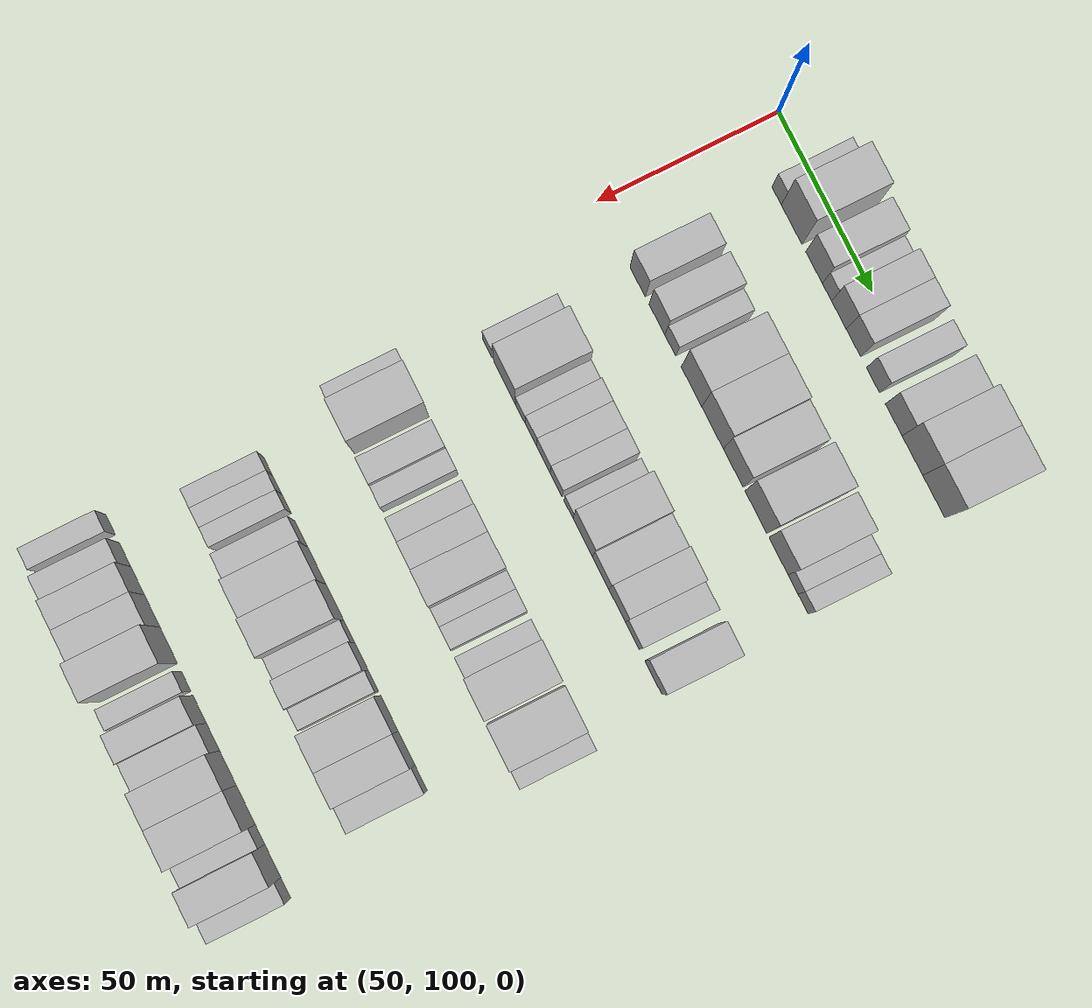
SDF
<sdf version="1.6">
 <world name="default">
  <model name="building_81">
   <static>1</static>
   <pose>50.0000 118.4614 0 0.000000 0.000000 0.000000</pose>
   <link name="link">
    <pose>0 0 6.00 0 0 0</pose>
    <collision name="collision"><geometry><box><size>20.0000 4.9748 12.0000</size></box></geometry></collision>
    <visual name="visual">
     <cast_shadows>0</cast_shadows>
     <geometry><box><size>20.0000 4.9748 12.0000</size></box></geometry>
     <material>
      <script>
       <uri>model://HANNAS_wall/materials/scripts</uri>
       <uri>model://HANNAS_wall/materials/textures</uri>
       <name>vrc/HANNAS_wall</name>
      </script>
     </material>
    </visual>
   </link>
  </model>
  <model name="building_82">
   <static>1</static>
   <pose>50.0000 126.4350 0 0.000000 0.000000 0.000000</pose>
   <link name="link">
    <pose>0 0 12.00 0 0 0</pose>
    <collision name="collision"><geometry><box><size>20.0000 10.9725 24.0000</size></box></geometry></collision>
    <visual name="visual">
     <cast_shadows>0</cast_shadows>
     <geometry><box><size>20.0000 10.9725 24.0000</size></box></geometry>
     <material>
      <script>
       <uri>model://HANNAS_wall/materials/scripts</uri>
       <uri>model://HANNAS_wall/materials/textures</uri>
       <name>vrc/HANNAS_wall</name>
      </script>
     </material>
    </visual>
   </link>
  </model>
  <model name="building_83">
   <static>1</static>
   <pose>50.0000 138.3244 0 0.000000 0.000000 0.000000</pose>
   <link name="link">
    <pose>0 0 9.00 0 0 0</pose>
    <collision name="collision"><geometry><box><size>20.0000 8.8062 18.0000</size></box></geometry></collision>
    <visual name="visual">
     <cast_shadows>0</cast_shadows>
     <geometry><box><size>20.0000 8.8062 18.0000</size></box></geometry>
     <material>
      <script>
       <uri>model://HANNAS_wall/materials/scripts</uri>
       <uri>model://HANNAS_wall/materials/textures</uri>
       <name>vrc/HANNAS_wall</name>
      </script>
     </material>
    </visual>
   </link>
  </model>
  <model name="building_84">
   <static>1</static>
   <pose>50.0000 145.1741 0 0.000000 0.000000 0.000000</pose>
   <link name="link">
    <pose>0 0 6.00 0 0 0</pose>
    <collision name="collision"><geometry><box><size>20.0000 4.8932 12.0000</size></box></geometry></collision>
    <visual name="visual">
     <cast_shadows>0</cast_shadows>
     <geometry><box><size>20.0000 4.8932 12.0000</size></box></geometry>
     <material>
      <script>
       <uri>model://HANNAS_wall/materials/scripts</uri>
       <uri>model://HANNAS_wall/materials/textures</uri>
       <name>vrc/HANNAS_wall</name>
      </script>
     </material>
    </visual>
   </link>
  </model>
  <model name="building_85">
   <static>1</static>
   <pose>50.0000 151.4866 0 0.000000 0.000000 0.000000</pose>
   <link name="link">
    <pose>0 0 9.00 0 0 0</pose>
    <collision name="collision"><geometry><box><size>20.0000 7.7319 18.0000</size></box></geometry></collision>
    <visual name="visual">
     <cast_shadows>0</cast_shadows>
     <geometry><box><size>20.0000 7.7319 18.0000</size></box></geometry>
     <material>
      <script>
       <uri>model://HANNAS_wall/materials/scripts</uri>
       <uri>model://HANNAS_wall/materials/textures</uri>
       <name>vrc/HANNAS_wall</name>
      </script>
     </material>
    </visual>
   </link>
  </model>
  <model name="building_86">
   <static>1</static>
   <pose>50.0000 159.1085 0 0.000000 0.000000 0.000000</pose>
   <link name="link">
    <pose>0 0 9.00 0 0 0</pose>
    <collision name="collision"><geometry><box><size>20.0000 7.5119 18.0000</size></box></geometry></collision>
    <visual name="visual">
     <cast_shadows>0</cast_shadows>
     <geometry><box><size>20.0000 7.5119 18.0000</size></box></geometry>
     <material>
      <script>
       <uri>model://HANNAS_wall/materials/scripts</uri>
       <uri>model://HANNAS_wall/materials/textures</uri>
       <name>vrc/HANNAS_wall</name>
      </script>
     </material>
    </visual>
   </link>
  </model>
  <model name="building_87">
   <static>1</static>
   <pose>50.0000 169.3067 0 0.000000 0.000000 0.000000</pose>
   <link name="link">
    <pose>0 0 7.50 0 0 0</pose>
    <collision name="collision"><geometry><box><size>20.0000 6.8845 15.0000</size></box></geometry></collision>
    <visual name="visual">
     <cast_shadows>0</cast_shadows>
     <geometry><box><size>20.0000 6.8845 15.0000</size></box></geometry>
     <material>
      <script>
       <uri>model://HANNAS_wall/materials/scripts</uri>
       <uri>model://HANNAS_wall/materials/textures</uri>
       <name>vrc/HANNAS_wall</name>
      </script>
     </material>
    </visual>
   </link>
  </model>
  <model name="building_88">
   <static>1</static>
   <pose>50.0000 180.1013 0 0.000000 0.000000 0.000000</pose>
   <link name="link">
    <pose>0 0 9.00 0 0 0</pose>
    <collision name="collision"><geometry><box><size>20.0000 8.7046 18.0000</size></box></geometry></collision>
    <visual name="visual">
     <cast_shadows>0</cast_shadows>
     <geometry><box><size>20.0000 8.7046 18.0000</size></box></geometry>
     <material>
      <script>
       <uri>model://HANNAS_wall/materials/scripts</uri>
       <uri>model://HANNAS_wall/materials/textures</uri>
       <name>vrc/HANNAS_wall</name>
      </script>
     </material>
    </visual>
   </link>
  </model>
  <model name="building_89">
   <static>1</static>
   <pose>50.0000 189.7913 0 0.000000 0.000000 0.000000</pose>
   <link name="link">
    <pose>0 0 12.00 0 0 0</pose>
    <collision name="collision"><geometry><box><size>20.0000 10.6756 24.0000</size></box></geometry></collision>
    <visual name="visual">
     <cast_shadows>0</cast_shadows>
     <geometry><box><size>20.0000 10.6756 24.0000</size></box></geometry>
     <material>
      <script>
       <uri>model://HANNAS_wall/materials/scripts</uri>
       <uri>model://HANNAS_wall/materials/textures</uri>
       <name>vrc/HANNAS_wall</name>
      </script>
     </material>
    </visual>
   </link>
  </model>
  <model name="building_90">
   <static>1</static>
   <pose>50.0000 200.8805 0 0.000000 0.000000 0.000000</pose>
   <link name="link">
    <pose>0 0 12.00 0 0 0</pose>
    <collision name="collision"><geometry><box><size>20.0000 11.5029 24.0000</size></box></geometry></collision>
    <visual name="visual">
     <cast_shadows>0</cast_shadows>
     <geometry><box><size>20.0000 11.5029 24.0000</size></box></geometry>
     <material>
      <script>
       <uri>model://HANNAS_wall/materials/scripts</uri>
       <uri>model://HANNAS_wall/materials/textures</uri>
       <name>vrc/HANNAS_wall</name>
      </script>
     </material>
    </visual>
   </link>
  </model>
  <model name="building_222">
   <static>1</static>
   <pose>90.0000 122.2642 0 0.000000 0.000000 0.000000</pose>
   <link name="link">
    <pose>0 0 9.00 0 0 0</pose>
    <collision name="collision"><geometry><box><size>20.0000 8.2583 18.0000</size></box></geometry></collision>
    <visual name="visual">
     <cast_shadows>0</cast_shadows>
     <geometry><box><size>20.0000 8.2583 18.0000</size></box></geometry>
     <material>
      <script>
       <uri>model://HANNAS_wall/materials/scripts</uri>
       <uri>model://HANNAS_wall/materials/textures</uri>
       <name>vrc/HANNAS_wall</name>
      </script>
     </material>
    </visual>
   </link>
  </model>
  <model name="building_223">
   <static>1</static>
   <pose>90.0000 132.6212 0 0.000000 0.000000 0.000000</pose>
   <link name="link">
    <pose>0 0 9.00 0 0 0</pose>
    <collision name="collision"><geometry><box><size>20.0000 8.4558 18.0000</size></box></geometry></collision>
    <visual name="visual">
     <cast_shadows>0</cast_shadows>
     <geometry><box><size>20.0000 8.4558 18.0000</size></box></geometry>
     <material>
      <script>
       <uri>model://HANNAS_wall/materials/scripts</uri>
       <uri>model://HANNAS_wall/materials/textures</uri>
       <name>vrc/HANNAS_wall</name>
      </script>
     </material>
    </visual>
   </link>
  </model>
  <model name="building_224">
   <static>1</static>
   <pose>90.0000 139.7389 0 0.000000 0.000000 0.000000</pose>
   <link name="link">
    <pose>0 0 6.00 0 0 0</pose>
    <collision name="collision"><geometry><box><size>20.0000 5.7796 12.0000</size></box></geometry></collision>
    <visual name="visual">
     <cast_shadows>0</cast_shadows>
     <geometry><box><size>20.0000 5.7796 12.0000</size></box></geometry>
     <material>
      <script>
       <uri>model://HANNAS_wall/materials/scripts</uri>
       <uri>model://HANNAS_wall/materials/textures</uri>
       <name>vrc/HANNAS_wall</name>
      </script>
     </material>
    </visual>
   </link>
  </model>
  <model name="building_225">
   <static>1</static>
   <pose>90.0000 151.0738 0 0.000000 0.000000 0.000000</pose>
   <link name="link">
    <pose>0 0 12.00 0 0 0</pose>
    <collision name="collision"><geometry><box><size>20.0000 10.8902 24.0000</size></box></geometry></collision>
    <visual name="visual">
     <cast_shadows>0</cast_shadows>
     <geometry><box><size>20.0000 10.8902 24.0000</size></box></geometry>
     <material>
      <script>
       <uri>model://HANNAS_wall/materials/scripts</uri>
       <uri>model://HANNAS_wall/materials/textures</uri>
       <name>vrc/HANNAS_wall</name>
      </script>
     </material>
    </visual>
   </link>
  </model>
  <model name="building_226">
   <static>1</static>
   <pose>90.0000 162.2575 0 0.000000 0.000000 0.000000</pose>
   <link name="link">
    <pose>0 0 12.00 0 0 0</pose>
    <collision name="collision"><geometry><box><size>20.0000 11.4773 24.0000</size></box></geometry></collision>
    <visual name="visual">
     <cast_shadows>0</cast_shadows>
     <geometry><box><size>20.0000 11.4773 24.0000</size></box></geometry>
     <material>
      <script>
       <uri>model://HANNAS_wall/materials/scripts</uri>
       <uri>model://HANNAS_wall/materials/textures</uri>
       <name>vrc/HANNAS_wall</name>
      </script>
     </material>
    </visual>
   </link>
  </model>
  <model name="building_227">
   <static>1</static>
   <pose>90.0000 173.1640 0 0.000000 0.000000 0.000000</pose>
   <link name="link">
    <pose>0 0 10.50 0 0 0</pose>
    <collision name="collision"><geometry><box><size>20.0000 10.3357 21.0000</size></box></geometry></collision>
    <visual name="visual">
     <cast_shadows>0</cast_shadows>
     <geometry><box><size>20.0000 10.3357 21.0000</size></box></geometry>
     <material>
      <script>
       <uri>model://HANNAS_wall/materials/scripts</uri>
       <uri>model://HANNAS_wall/materials/textures</uri>
       <name>vrc/HANNAS_wall</name>
      </script>
     </material>
    </visual>
   </link>
  </model>
  <model name="building_228">
   <static>1</static>
   <pose>90.0000 185.0966 0 0.000000 0.000000 0.000000</pose>
   <link name="link">
    <pose>0 0 12.00 0 0 0</pose>
    <collision name="collision"><geometry><box><size>20.0000 11.5297 24.0000</size></box></geometry></collision>
    <visual name="visual">
     <cast_shadows>0</cast_shadows>
     <geometry><box><size>20.0000 11.5297 24.0000</size></box></geometry>
     <material>
      <script>
       <uri>model://HANNAS_wall/materials/scripts</uri>
       <uri>model://HANNAS_wall/materials/textures</uri>
       <name>vrc/HANNAS_wall</name>
      </script>
     </material>
    </visual>
   </link>
  </model>
  <model name="building_229">
   <static>1</static>
   <pose>90.0000 196.8901 0 0.000000 0.000000 0.000000</pose>
   <link name="link">
    <pose>0 0 10.50 0 0 0</pose>
    <collision name="collision"><geometry><box><size>20.0000 10.0572 21.0000</size></box></geometry></collision>
    <visual name="visual">
     <cast_shadows>0</cast_shadows>
     <geometry><box><size>20.0000 10.0572 21.0000</size></box></geometry>
     <material>
      <script>
       <uri>model://HANNAS_wall/materials/scripts</uri>
       <uri>model://HANNAS_wall/materials/textures</uri>
       <name>vrc/HANNAS_wall</name>
      </script>
     </material>
    </visual>
   </link>
  </model>
  <model name="building_230">
   <static>1</static>
   <pose>90.0000 204.5111 0 0.000000 0.000000 0.000000</pose>
   <link name="link">
    <pose>0 0 6.00 0 0 0</pose>
    <collision name="collision"><geometry><box><size>20.0000 5.1848 12.0000</size></box></geometry></collision>
    <visual name="visual">
     <cast_shadows>0</cast_shadows>
     <geometry><box><size>20.0000 5.1848 12.0000</size></box></geometry>
     <material>
      <script>
       <uri>model://HANNAS_wall/materials/scripts</uri>
       <uri>model://HANNAS_wall/materials/textures</uri>
       <name>vrc/HANNAS_wall</name>
      </script>
     </material>
    </visual>
   </link>
  </model>
  <model name="building_231">
   <static>1</static>
   <pose>90.0000 209.7317 0 0.000000 0.000000 0.000000</pose>
   <link name="link">
    <pose>0 0 6.00 0 0 0</pose>
    <collision name="collision"><geometry><box><size>20.0000 5.2563 12.0000</size></box></geometry></collision>
    <visual name="visual">
     <cast_shadows>0</cast_shadows>
     <geometry><box><size>20.0000 5.2563 12.0000</size></box></geometry>
     <material>
      <script>
       <uri>model://HANNAS_wall/materials/scripts</uri>
       <uri>model://HANNAS_wall/materials/textures</uri>
       <name>vrc/HANNAS_wall</name>
      </script>
     </material>
    </visual>
   </link>
  </model>
  <model name="building_357">
   <static>1</static>
   <pose>130.0000 120.6664 0 0.000000 0.000000 0.000000</pose>
   <link name="link">
    <pose>0 0 6.00 0 0 0</pose>
    <collision name="collision"><geometry><box><size>20.0000 4.8361 12.0000</size></box></geometry></collision>
    <visual name="visual">
     <cast_shadows>0</cast_shadows>
     <geometry><box><size>20.0000 4.8361 12.0000</size></box></geometry>
     <material>
      <script>
       <uri>model://HANNAS_wall/materials/scripts</uri>
       <uri>model://HANNAS_wall/materials/textures</uri>
       <name>vrc/HANNAS_wall</name>
      </script>
     </material>
    </visual>
   </link>
  </model>
  <model name="building_358">
   <static>1</static>
   <pose>130.0000 129.9814 0 0.000000 0.000000 0.000000</pose>
   <link name="link">
    <pose>0 0 12.00 0 0 0</pose>
    <collision name="collision"><geometry><box><size>20.0000 11.7938 24.0000</size></box></geometry></collision>
    <visual name="visual">
     <cast_shadows>0</cast_shadows>
     <geometry><box><size>20.0000 11.7938 24.0000</size></box></geometry>
     <material>
      <script>
       <uri>model://HANNAS_wall/materials/scripts</uri>
       <uri>model://HANNAS_wall/materials/textures</uri>
       <name>vrc/HANNAS_wall</name>
      </script>
     </material>
    </visual>
   </link>
  </model>
  <model name="building_359">
   <static>1</static>
   <pose>130.0000 138.5526 0 0.000000 0.000000 0.000000</pose>
   <link name="link">
    <pose>0 0 6.00 0 0 0</pose>
    <collision name="collision"><geometry><box><size>20.0000 5.3488 12.0000</size></box></geometry></collision>
    <visual name="visual">
     <cast_shadows>0</cast_shadows>
     <geometry><box><size>20.0000 5.3488 12.0000</size></box></geometry>
     <material>
      <script>
       <uri>model://HANNAS_wall/materials/scripts</uri>
       <uri>model://HANNAS_wall/materials/textures</uri>
       <name>vrc/HANNAS_wall</name>
      </script>
     </material>
    </visual>
   </link>
  </model>
  <model name="building_360">
   <static>1</static>
   <pose>130.0000 144.2498 0 0.000000 0.000000 0.000000</pose>
   <link name="link">
    <pose>0 0 7.50 0 0 0</pose>
    <collision name="collision"><geometry><box><size>20.0000 6.0454 15.0000</size></box></geometry></collision>
    <visual name="visual">
     <cast_shadows>0</cast_shadows>
     <geometry><box><size>20.0000 6.0454 15.0000</size></box></geometry>
     <material>
      <script>
       <uri>model://HANNAS_wall/materials/scripts</uri>
       <uri>model://HANNAS_wall/materials/textures</uri>
       <name>vrc/HANNAS_wall</name>
      </script>
     </material>
    </visual>
   </link>
  </model>
  <model name="building_361">
   <static>1</static>
   <pose>130.0000 150.8935 0 0.000000 0.000000 0.000000</pose>
   <link name="link">
    <pose>0 0 7.50 0 0 0</pose>
    <collision name="collision"><geometry><box><size>20.0000 7.2420 15.0000</size></box></geometry></collision>
    <visual name="visual">
     <cast_shadows>0</cast_shadows>
     <geometry><box><size>20.0000 7.2420 15.0000</size></box></geometry>
     <material>
      <script>
       <uri>model://HANNAS_wall/materials/scripts</uri>
       <uri>model://HANNAS_wall/materials/textures</uri>
       <name>vrc/HANNAS_wall</name>
      </script>
     </material>
    </visual>
   </link>
  </model>
  <model name="building_362">
   <static>1</static>
   <pose>130.0000 157.7365 0 0.000000 0.000000 0.000000</pose>
   <link name="link">
    <pose>0 0 7.50 0 0 0</pose>
    <collision name="collision"><geometry><box><size>20.0000 6.4440 15.0000</size></box></geometry></collision>
    <visual name="visual">
     <cast_shadows>0</cast_shadows>
     <geometry><box><size>20.0000 6.4440 15.0000</size></box></geometry>
     <material>
      <script>
       <uri>model://HANNAS_wall/materials/scripts</uri>
       <uri>model://HANNAS_wall/materials/textures</uri>
       <name>vrc/HANNAS_wall</name>
      </script>
     </material>
    </visual>
   </link>
  </model>
  <model name="building_363">
   <static>1</static>
   <pose>130.0000 164.3667 0 0.000000 0.000000 0.000000</pose>
   <link name="link">
    <pose>0 0 6.00 0 0 0</pose>
    <collision name="collision"><geometry><box><size>20.0000 4.8163 12.0000</size></box></geometry></collision>
    <visual name="visual">
     <cast_shadows>0</cast_shadows>
     <geometry><box><size>20.0000 4.8163 12.0000</size></box></geometry>
     <material>
      <script>
       <uri>model://HANNAS_wall/materials/scripts</uri>
       <uri>model://HANNAS_wall/materials/textures</uri>
       <name>vrc/HANNAS_wall</name>
      </script>
     </material>
    </visual>
   </link>
  </model>
  <model name="building_364">
   <static>1</static>
   <pose>130.0000 171.9225 0 0.000000 0.000000 0.000000</pose>
   <link name="link">
    <pose>0 0 12.00 0 0 0</pose>
    <collision name="collision"><geometry><box><size>20.0000 10.2955 24.0000</size></box></geometry></collision>
    <visual name="visual">
     <cast_shadows>0</cast_shadows>
     <geometry><box><size>20.0000 10.2955 24.0000</size></box></geometry>
     <material>
      <script>
       <uri>model://HANNAS_wall/materials/scripts</uri>
       <uri>model://HANNAS_wall/materials/textures</uri>
       <name>vrc/HANNAS_wall</name>
      </script>
     </material>
    </visual>
   </link>
  </model>
  <model name="building_365">
   <static>1</static>
   <pose>130.0000 181.4546 0 0.000000 0.000000 0.000000</pose>
   <link name="link">
    <pose>0 0 9.00 0 0 0</pose>
    <collision name="collision"><geometry><box><size>20.0000 8.7687 18.0000</size></box></geometry></collision>
    <visual name="visual">
     <cast_shadows>0</cast_shadows>
     <geometry><box><size>20.0000 8.7687 18.0000</size></box></geometry>
     <material>
      <script>
       <uri>model://HANNAS_wall/materials/scripts</uri>
       <uri>model://HANNAS_wall/materials/textures</uri>
       <name>vrc/HANNAS_wall</name>
      </script>
     </material>
    </visual>
   </link>
  </model>
  <model name="building_366">
   <static>1</static>
   <pose>130.0000 190.1865 0 0.000000 0.000000 0.000000</pose>
   <link name="link">
    <pose>0 0 10.50 0 0 0</pose>
    <collision name="collision"><geometry><box><size>20.0000 8.6950 21.0000</size></box></geometry></collision>
    <visual name="visual">
     <cast_shadows>0</cast_shadows>
     <geometry><box><size>20.0000 8.6950 21.0000</size></box></geometry>
     <material>
      <script>
       <uri>model://HANNAS_wall/materials/scripts</uri>
       <uri>model://HANNAS_wall/materials/textures</uri>
       <name>vrc/HANNAS_wall</name>
      </script>
     </material>
    </visual>
   </link>
  </model>
  <model name="building_367">
   <static>1</static>
   <pose>130.0000 198.1970 0 0.000000 0.000000 0.000000</pose>
   <link name="link">
    <pose>0 0 7.50 0 0 0</pose>
    <collision name="collision"><geometry><box><size>20.0000 7.3259 15.0000</size></box></geometry></collision>
    <visual name="visual">
     <cast_shadows>0</cast_shadows>
     <geometry><box><size>20.0000 7.3259 15.0000</size></box></geometry>
     <material>
      <script>
       <uri>model://HANNAS_wall/materials/scripts</uri>
       <uri>model://HANNAS_wall/materials/textures</uri>
       <name>vrc/HANNAS_wall</name>
      </script>
     </material>
    </visual>
   </link>
  </model>
  <model name="building_368">
   <static>1</static>
   <pose>130.0000 209.2915 0 0.000000 0.000000 0.000000</pose>
   <link name="link">
    <pose>0 0 9.00 0 0 0</pose>
    <collision name="collision"><geometry><box><size>20.0000 8.8631 18.0000</size></box></geometry></collision>
    <visual name="visual">
     <cast_shadows>0</cast_shadows>
     <geometry><box><size>20.0000 8.8631 18.0000</size></box></geometry>
     <material>
      <script>
       <uri>model://HANNAS_wall/materials/scripts</uri>
       <uri>model://HANNAS_wall/materials/textures</uri>
       <name>vrc/HANNAS_wall</name>
      </script>
     </material>
    </visual>
   </link>
  </model>
  <model name="building_499">
   <static>1</static>
   <pose>170.0000 115.4623 0 0.000000 0.000000 0.000000</pose>
   <link name="link">
    <pose>0 0 6.00 0 0 0</pose>
    <collision name="collision"><geometry><box><size>20.0000 5.3354 12.0000</size></box></geometry></collision>
    <visual name="visual">
     <cast_shadows>0</cast_shadows>
     <geometry><box><size>20.0000 5.3354 12.0000</size></box></geometry>
     <material>
      <script>
       <uri>model://HANNAS_wall/materials/scripts</uri>
       <uri>model://HANNAS_wall/materials/textures</uri>
       <name>vrc/HANNAS_wall</name>
      </script>
     </material>
    </visual>
   </link>
  </model>
  <model name="building_500">
   <static>1</static>
   <pose>170.0000 123.6803 0 0.000000 0.000000 0.000000</pose>
   <link name="link">
    <pose>0 0 12.00 0 0 0</pose>
    <collision name="collision"><geometry><box><size>20.0000 11.1006 24.0000</size></box></geometry></collision>
    <visual name="visual">
     <cast_shadows>0</cast_shadows>
     <geometry><box><size>20.0000 11.1006 24.0000</size></box></geometry>
     <material>
      <script>
       <uri>model://HANNAS_wall/materials/scripts</uri>
       <uri>model://HANNAS_wall/materials/textures</uri>
       <name>vrc/HANNAS_wall</name>
      </script>
     </material>
    </visual>
   </link>
  </model>
  <model name="building_501">
   <static>1</static>
   <pose>170.0000 135.7635 0 0.000000 0.000000 0.000000</pose>
   <link name="link">
    <pose>0 0 7.50 0 0 0</pose>
    <collision name="collision"><geometry><box><size>20.0000 7.0659 15.0000</size></box></geometry></collision>
    <visual name="visual">
     <cast_shadows>0</cast_shadows>
     <geometry><box><size>20.0000 7.0659 15.0000</size></box></geometry>
     <material>
      <script>
       <uri>model://HANNAS_wall/materials/scripts</uri>
       <uri>model://HANNAS_wall/materials/textures</uri>
       <name>vrc/HANNAS_wall</name>
      </script>
     </material>
    </visual>
   </link>
  </model>
  <model name="building_502">
   <static>1</static>
   <pose>170.0000 142.1696 0 0.000000 0.000000 0.000000</pose>
   <link name="link">
    <pose>0 0 6.00 0 0 0</pose>
    <collision name="collision"><geometry><box><size>20.0000 5.7462 12.0000</size></box></geometry></collision>
    <visual name="visual">
     <cast_shadows>0</cast_shadows>
     <geometry><box><size>20.0000 5.7462 12.0000</size></box></geometry>
     <material>
      <script>
       <uri>model://HANNAS_wall/materials/scripts</uri>
       <uri>model://HANNAS_wall/materials/textures</uri>
       <name>vrc/HANNAS_wall</name>
      </script>
     </material>
    </visual>
   </link>
  </model>
  <model name="building_503">
   <static>1</static>
   <pose>170.0000 151.2770 0 0.000000 0.000000 0.000000</pose>
   <link name="link">
    <pose>0 0 7.50 0 0 0</pose>
    <collision name="collision"><geometry><box><size>20.0000 6.4686 15.0000</size></box></geometry></collision>
    <visual name="visual">
     <cast_shadows>0</cast_shadows>
     <geometry><box><size>20.0000 6.4686 15.0000</size></box></geometry>
     <material>
      <script>
       <uri>model://HANNAS_wall/materials/scripts</uri>
       <uri>model://HANNAS_wall/materials/textures</uri>
       <name>vrc/HANNAS_wall</name>
      </script>
     </material>
    </visual>
   </link>
  </model>
  <model name="building_504">
   <static>1</static>
   <pose>170.0000 158.2313 0 0.000000 0.000000 0.000000</pose>
   <link name="link">
    <pose>0 0 9.00 0 0 0</pose>
    <collision name="collision"><geometry><box><size>20.0000 7.4401 18.0000</size></box></geometry></collision>
    <visual name="visual">
     <cast_shadows>0</cast_shadows>
     <geometry><box><size>20.0000 7.4401 18.0000</size></box></geometry>
     <material>
      <script>
       <uri>model://HANNAS_wall/materials/scripts</uri>
       <uri>model://HANNAS_wall/materials/textures</uri>
       <name>vrc/HANNAS_wall</name>
      </script>
     </material>
    </visual>
   </link>
  </model>
  <model name="building_505">
   <static>1</static>
   <pose>170.0000 166.6391 0 0.000000 0.000000 0.000000</pose>
   <link name="link">
    <pose>0 0 10.50 0 0 0</pose>
    <collision name="collision"><geometry><box><size>20.0000 9.3755 21.0000</size></box></geometry></collision>
    <visual name="visual">
     <cast_shadows>0</cast_shadows>
     <geometry><box><size>20.0000 9.3755 21.0000</size></box></geometry>
     <material>
      <script>
       <uri>model://HANNAS_wall/materials/scripts</uri>
       <uri>model://HANNAS_wall/materials/textures</uri>
       <name>vrc/HANNAS_wall</name>
      </script>
     </material>
    </visual>
   </link>
  </model>
  <model name="building_506">
   <static>1</static>
   <pose>170.0000 173.7626 0 0.000000 0.000000 0.000000</pose>
   <link name="link">
    <pose>0 0 6.00 0 0 0</pose>
    <collision name="collision"><geometry><box><size>20.0000 4.8714 12.0000</size></box></geometry></collision>
    <visual name="visual">
     <cast_shadows>0</cast_shadows>
     <geometry><box><size>20.0000 4.8714 12.0000</size></box></geometry>
     <material>
      <script>
       <uri>model://HANNAS_wall/materials/scripts</uri>
       <uri>model://HANNAS_wall/materials/textures</uri>
       <name>vrc/HANNAS_wall</name>
      </script>
     </material>
    </visual>
   </link>
  </model>
  <model name="building_507">
   <static>1</static>
   <pose>170.0000 179.1570 0 0.000000 0.000000 0.000000</pose>
   <link name="link">
    <pose>0 0 6.00 0 0 0</pose>
    <collision name="collision"><geometry><box><size>20.0000 5.9174 12.0000</size></box></geometry></collision>
    <visual name="visual">
     <cast_shadows>0</cast_shadows>
     <geometry><box><size>20.0000 5.9174 12.0000</size></box></geometry>
     <material>
      <script>
       <uri>model://HANNAS_wall/materials/scripts</uri>
       <uri>model://HANNAS_wall/materials/textures</uri>
       <name>vrc/HANNAS_wall</name>
      </script>
     </material>
    </visual>
   </link>
  </model>
  <model name="building_508">
   <static>1</static>
   <pose>170.0000 186.8807 0 0.000000 0.000000 0.000000</pose>
   <link name="link">
    <pose>0 0 6.00 0 0 0</pose>
    <collision name="collision"><geometry><box><size>20.0000 5.5298 12.0000</size></box></geometry></collision>
    <visual name="visual">
     <cast_shadows>0</cast_shadows>
     <geometry><box><size>20.0000 5.5298 12.0000</size></box></geometry>
     <material>
      <script>
       <uri>model://HANNAS_wall/materials/scripts</uri>
       <uri>model://HANNAS_wall/materials/textures</uri>
       <name>vrc/HANNAS_wall</name>
      </script>
     </material>
    </visual>
   </link>
  </model>
  <model name="building_509">
   <static>1</static>
   <pose>170.0000 194.9862 0 0.000000 0.000000 0.000000</pose>
   <link name="link">
    <pose>0 0 12.00 0 0 0</pose>
    <collision name="collision"><geometry><box><size>20.0000 10.6812 24.0000</size></box></geometry></collision>
    <visual name="visual">
     <cast_shadows>0</cast_shadows>
     <geometry><box><size>20.0000 10.6812 24.0000</size></box></geometry>
     <material>
      <script>
       <uri>model://HANNAS_wall/materials/scripts</uri>
       <uri>model://HANNAS_wall/materials/textures</uri>
       <name>vrc/HANNAS_wall</name>
      </script>
     </material>
    </visual>
   </link>
  </model>
  <model name="building_510">
   <static>1</static>
   <pose>170.0000 207.1782 0 0.000000 0.000000 0.000000</pose>
   <link name="link">
    <pose>0 0 12.00 0 0 0</pose>
    <collision name="collision"><geometry><box><size>20.0000 11.7029 24.0000</size></box></geometry></collision>
    <visual name="visual">
     <cast_shadows>0</cast_shadows>
     <geometry><box><size>20.0000 11.7029 24.0000</size></box></geometry>
     <material>
      <script>
       <uri>model://HANNAS_wall/materials/scripts</uri>
       <uri>model://HANNAS_wall/materials/textures</uri>
       <name>vrc/HANNAS_wall</name>
      </script>
     </material>
    </visual>
   </link>
  </model>
  <model name="building_511">
   <static>1</static>
   <pose>170.0000 215.5628 0 0.000000 0.000000 0.000000</pose>
   <link name="link">
    <pose>0 0 6.00 0 0 0</pose>
    <collision name="collision"><geometry><box><size>20.0000 5.0663 12.0000</size></box></geometry></collision>
    <visual name="visual">
     <cast_shadows>0</cast_shadows>
     <geometry><box><size>20.0000 5.0663 12.0000</size></box></geometry>
     <material>
      <script>
       <uri>model://HANNAS_wall/materials/scripts</uri>
       <uri>model://HANNAS_wall/materials/textures</uri>
       <name>vrc/HANNAS_wall</name>
      </script>
     </material>
    </visual>
   </link>
  </model>
  <model name="building_645">
   <static>1</static>
   <pose>210.0000 122.5677 0 0.000000 0.000000 0.000000</pose>
   <link name="link">
    <pose>0 0 6.00 0 0 0</pose>
    <collision name="collision"><geometry><box><size>20.0000 4.9925 12.0000</size></box></geometry></collision>
    <visual name="visual">
     <cast_shadows>0</cast_shadows>
     <geometry><box><size>20.0000 4.9925 12.0000</size></box></geometry>
     <material>
      <script>
       <uri>model://HANNAS_wall/materials/scripts</uri>
       <uri>model://HANNAS_wall/materials/textures</uri>
       <name>vrc/HANNAS_wall</name>
      </script>
     </material>
    </visual>
   </link>
  </model>
  <model name="building_646">
   <static>1</static>
   <pose>210.0000 127.6431 0 0.000000 0.000000 0.000000</pose>
   <link name="link">
    <pose>0 0 6.00 0 0 0</pose>
    <collision name="collision"><geometry><box><size>20.0000 5.1582 12.0000</size></box></geometry></collision>
    <visual name="visual">
     <cast_shadows>0</cast_shadows>
     <geometry><box><size>20.0000 5.1582 12.0000</size></box></geometry>
     <material>
      <script>
       <uri>model://HANNAS_wall/materials/scripts</uri>
       <uri>model://HANNAS_wall/materials/textures</uri>
       <name>vrc/HANNAS_wall</name>
      </script>
     </material>
    </visual>
   </link>
  </model>
  <model name="building_647">
   <static>1</static>
   <pose>210.0000 132.7886 0 0.000000 0.000000 0.000000</pose>
   <link name="link">
    <pose>0 0 6.00 0 0 0</pose>
    <collision name="collision"><geometry><box><size>20.0000 5.1326 12.0000</size></box></geometry></collision>
    <visual name="visual">
     <cast_shadows>0</cast_shadows>
     <geometry><box><size>20.0000 5.1326 12.0000</size></box></geometry>
     <material>
      <script>
       <uri>model://HANNAS_wall/materials/scripts</uri>
       <uri>model://HANNAS_wall/materials/textures</uri>
       <name>vrc/HANNAS_wall</name>
      </script>
     </material>
    </visual>
   </link>
  </model>
  <model name="building_648">
   <static>1</static>
   <pose>210.0000 140.8597 0 0.000000 0.000000 0.000000</pose>
   <link name="link">
    <pose>0 0 7.50 0 0 0</pose>
    <collision name="collision"><geometry><box><size>20.0000 7.0096 15.0000</size></box></geometry></collision>
    <visual name="visual">
     <cast_shadows>0</cast_shadows>
     <geometry><box><size>20.0000 7.0096 15.0000</size></box></geometry>
     <material>
      <script>
       <uri>model://HANNAS_wall/materials/scripts</uri>
       <uri>model://HANNAS_wall/materials/textures</uri>
       <name>vrc/HANNAS_wall</name>
      </script>
     </material>
    </visual>
   </link>
  </model>
  <model name="building_649">
   <static>1</static>
   <pose>210.0000 149.4125 0 0.000000 0.000000 0.000000</pose>
   <link name="link">
    <pose>0 0 10.50 0 0 0</pose>
    <collision name="collision"><geometry><box><size>20.0000 10.0960 21.0000</size></box></geometry></collision>
    <visual name="visual">
     <cast_shadows>0</cast_shadows>
     <geometry><box><size>20.0000 10.0960 21.0000</size></box></geometry>
     <material>
      <script>
       <uri>model://HANNAS_wall/materials/scripts</uri>
       <uri>model://HANNAS_wall/materials/textures</uri>
       <name>vrc/HANNAS_wall</name>
      </script>
     </material>
    </visual>
   </link>
  </model>
  <model name="building_650">
   <static>1</static>
   <pose>210.0000 159.3554 0 0.000000 0.000000 0.000000</pose>
   <link name="link">
    <pose>0 0 12.00 0 0 0</pose>
    <collision name="collision"><geometry><box><size>20.0000 9.7899 24.0000</size></box></geometry></collision>
    <visual name="visual">
     <cast_shadows>0</cast_shadows>
     <geometry><box><size>20.0000 9.7899 24.0000</size></box></geometry>
     <material>
      <script>
       <uri>model://HANNAS_wall/materials/scripts</uri>
       <uri>model://HANNAS_wall/materials/textures</uri>
       <name>vrc/HANNAS_wall</name>
      </script>
     </material>
    </visual>
   </link>
  </model>
  <model name="building_651">
   <static>1</static>
   <pose>210.0000 167.1666 0 0.000000 0.000000 0.000000</pose>
   <link name="link">
    <pose>0 0 6.00 0 0 0</pose>
    <collision name="collision"><geometry><box><size>20.0000 5.8325 12.0000</size></box></geometry></collision>
    <visual name="visual">
     <cast_shadows>0</cast_shadows>
     <geometry><box><size>20.0000 5.8325 12.0000</size></box></geometry>
     <material>
      <script>
       <uri>model://HANNAS_wall/materials/scripts</uri>
       <uri>model://HANNAS_wall/materials/textures</uri>
       <name>vrc/HANNAS_wall</name>
      </script>
     </material>
    </visual>
   </link>
  </model>
  <model name="building_652">
   <static>1</static>
   <pose>210.0000 173.7467 0 0.000000 0.000000 0.000000</pose>
   <link name="link">
    <pose>0 0 9.00 0 0 0</pose>
    <collision name="collision"><geometry><box><size>20.0000 7.3276 18.0000</size></box></geometry></collision>
    <visual name="visual">
     <cast_shadows>0</cast_shadows>
     <geometry><box><size>20.0000 7.3276 18.0000</size></box></geometry>
     <material>
      <script>
       <uri>model://HANNAS_wall/materials/scripts</uri>
       <uri>model://HANNAS_wall/materials/textures</uri>
       <name>vrc/HANNAS_wall</name>
      </script>
     </material>
    </visual>
   </link>
  </model>
  <model name="building_653">
   <static>1</static>
   <pose>210.0000 180.2083 0 0.000000 0.000000 0.000000</pose>
   <link name="link">
    <pose>0 0 6.00 0 0 0</pose>
    <collision name="collision"><geometry><box><size>20.0000 5.5956 12.0000</size></box></geometry></collision>
    <visual name="visual">
     <cast_shadows>0</cast_shadows>
     <geometry><box><size>20.0000 5.5956 12.0000</size></box></geometry>
     <material>
      <script>
       <uri>model://HANNAS_wall/materials/scripts</uri>
       <uri>model://HANNAS_wall/materials/textures</uri>
       <name>vrc/HANNAS_wall</name>
      </script>
     </material>
    </visual>
   </link>
  </model>
  <model name="building_654">
   <static>1</static>
   <pose>210.0000 188.7343 0 0.000000 0.000000 0.000000</pose>
   <link name="link">
    <pose>0 0 10.50 0 0 0</pose>
    <collision name="collision"><geometry><box><size>20.0000 9.4565 21.0000</size></box></geometry></collision>
    <visual name="visual">
     <cast_shadows>0</cast_shadows>
     <geometry><box><size>20.0000 9.4565 21.0000</size></box></geometry>
     <material>
      <script>
       <uri>model://HANNAS_wall/materials/scripts</uri>
       <uri>model://HANNAS_wall/materials/textures</uri>
       <name>vrc/HANNAS_wall</name>
      </script>
     </material>
    </visual>
   </link>
  </model>
  <model name="building_655">
   <static>1</static>
   <pose>210.0000 197.9505 0 0.000000 0.000000 0.000000</pose>
   <link name="link">
    <pose>0 0 10.50 0 0 0</pose>
    <collision name="collision"><geometry><box><size>20.0000 8.9757 21.0000</size></box></geometry></collision>
    <visual name="visual">
     <cast_shadows>0</cast_shadows>
     <geometry><box><size>20.0000 8.9757 21.0000</size></box></geometry>
     <material>
      <script>
       <uri>model://HANNAS_wall/materials/scripts</uri>
       <uri>model://HANNAS_wall/materials/textures</uri>
       <name>vrc/HANNAS_wall</name>
      </script>
     </material>
    </visual>
   </link>
  </model>
  <model name="building_656">
   <static>1</static>
   <pose>210.0000 205.7822 0 0.000000 0.000000 0.000000</pose>
   <link name="link">
    <pose>0 0 7.50 0 0 0</pose>
    <collision name="collision"><geometry><box><size>20.0000 6.6877 15.0000</size></box></geometry></collision>
    <visual name="visual">
     <cast_shadows>0</cast_shadows>
     <geometry><box><size>20.0000 6.6877 15.0000</size></box></geometry>
     <material>
      <script>
       <uri>model://HANNAS_wall/materials/scripts</uri>
       <uri>model://HANNAS_wall/materials/textures</uri>
       <name>vrc/HANNAS_wall</name>
      </script>
     </material>
    </visual>
   </link>
  </model>
  <model name="building_787">
   <static>1</static>
   <pose>250.0000 118.3712 0 0.000000 0.000000 0.000000</pose>
   <link name="link">
    <pose>0 0 6.00 0 0 0</pose>
    <collision name="collision"><geometry><box><size>20.0000 5.5591 12.0000</size></box></geometry></collision>
    <visual name="visual">
     <cast_shadows>0</cast_shadows>
     <geometry><box><size>20.0000 5.5591 12.0000</size></box></geometry>
     <material>
      <script>
       <uri>model://HANNAS_wall/materials/scripts</uri>
       <uri>model://HANNAS_wall/materials/textures</uri>
       <name>vrc/HANNAS_wall</name>
      </script>
     </material>
    </visual>
   </link>
  </model>
  <model name="building_788">
   <static>1</static>
   <pose>250.0000 126.3703 0 0.000000 0.000000 0.000000</pose>
   <link name="link">
    <pose>0 0 7.50 0 0 0</pose>
    <collision name="collision"><geometry><box><size>20.0000 6.4390 15.0000</size></box></geometry></collision>
    <visual name="visual">
     <cast_shadows>0</cast_shadows>
     <geometry><box><size>20.0000 6.4390 15.0000</size></box></geometry>
     <material>
      <script>
       <uri>model://HANNAS_wall/materials/scripts</uri>
       <uri>model://HANNAS_wall/materials/textures</uri>
       <name>vrc/HANNAS_wall</name>
      </script>
     </material>
    </visual>
   </link>
  </model>
  <model name="building_789">
   <static>1</static>
   <pose>250.0000 133.3869 0 0.000000 0.000000 0.000000</pose>
   <link name="link">
    <pose>0 0 9.00 0 0 0</pose>
    <collision name="collision"><geometry><box><size>20.0000 7.5943 18.0000</size></box></geometry></collision>
    <visual name="visual">
     <cast_shadows>0</cast_shadows>
     <geometry><box><size>20.0000 7.5943 18.0000</size></box></geometry>
     <material>
      <script>
       <uri>model://HANNAS_wall/materials/scripts</uri>
       <uri>model://HANNAS_wall/materials/textures</uri>
       <name>vrc/HANNAS_wall</name>
      </script>
     </material>
    </visual>
   </link>
  </model>
  <model name="building_790">
   <static>1</static>
   <pose>250.0000 141.4978 0 0.000000 0.000000 0.000000</pose>
   <link name="link">
    <pose>0 0 9.00 0 0 0</pose>
    <collision name="collision"><geometry><box><size>20.0000 8.6274 18.0000</size></box></geometry></collision>
    <visual name="visual">
     <cast_shadows>0</cast_shadows>
     <geometry><box><size>20.0000 8.6274 18.0000</size></box></geometry>
     <material>
      <script>
       <uri>model://HANNAS_wall/materials/scripts</uri>
       <uri>model://HANNAS_wall/materials/textures</uri>
       <name>vrc/HANNAS_wall</name>
      </script>
     </material>
    </visual>
   </link>
  </model>
  <model name="building_791">
   <static>1</static>
   <pose>250.0000 150.7041 0 0.000000 0.000000 0.000000</pose>
   <link name="link">
    <pose>0 0 12.00 0 0 0</pose>
    <collision name="collision"><geometry><box><size>20.0000 9.7852 24.0000</size></box></geometry></collision>
    <visual name="visual">
     <cast_shadows>0</cast_shadows>
     <geometry><box><size>20.0000 9.7852 24.0000</size></box></geometry>
     <material>
      <script>
       <uri>model://HANNAS_wall/materials/scripts</uri>
       <uri>model://HANNAS_wall/materials/textures</uri>
       <name>vrc/HANNAS_wall</name>
      </script>
     </material>
    </visual>
   </link>
  </model>
  <model name="building_792">
   <static>1</static>
   <pose>250.0000 160.2827 0 0.000000 0.000000 0.000000</pose>
   <link name="link">
    <pose>0 0 6.00 0 0 0</pose>
    <collision name="collision"><geometry><box><size>20.0000 5.3719 12.0000</size></box></geometry></collision>
    <visual name="visual">
     <cast_shadows>0</cast_shadows>
     <geometry><box><size>20.0000 5.3719 12.0000</size></box></geometry>
     <material>
      <script>
       <uri>model://HANNAS_wall/materials/scripts</uri>
       <uri>model://HANNAS_wall/materials/textures</uri>
       <name>vrc/HANNAS_wall</name>
      </script>
     </material>
    </visual>
   </link>
  </model>
  <model name="building_793">
   <static>1</static>
   <pose>250.0000 167.6566 0 0.000000 0.000000 0.000000</pose>
   <link name="link">
    <pose>0 0 9.00 0 0 0</pose>
    <collision name="collision"><geometry><box><size>20.0000 7.3760 18.0000</size></box></geometry></collision>
    <visual name="visual">
     <cast_shadows>0</cast_shadows>
     <geometry><box><size>20.0000 7.3760 18.0000</size></box></geometry>
     <material>
      <script>
       <uri>model://HANNAS_wall/materials/scripts</uri>
       <uri>model://HANNAS_wall/materials/textures</uri>
       <name>vrc/HANNAS_wall</name>
      </script>
     </material>
    </visual>
   </link>
  </model>
  <model name="building_794">
   <static>1</static>
   <pose>250.0000 174.9618 0 0.000000 0.000000 0.000000</pose>
   <link name="link">
    <pose>0 0 7.50 0 0 0</pose>
    <collision name="collision"><geometry><box><size>20.0000 7.2343 15.0000</size></box></geometry></collision>
    <visual name="visual">
     <cast_shadows>0</cast_shadows>
     <geometry><box><size>20.0000 7.2343 15.0000</size></box></geometry>
     <material>
      <script>
       <uri>model://HANNAS_wall/materials/scripts</uri>
       <uri>model://HANNAS_wall/materials/textures</uri>
       <name>vrc/HANNAS_wall</name>
      </script>
     </material>
    </visual>
   </link>
  </model>
  <model name="building_795">
   <static>1</static>
   <pose>250.0000 183.1537 0 0.000000 0.000000 0.000000</pose>
   <link name="link">
    <pose>0 0 10.50 0 0 0</pose>
    <collision name="collision"><geometry><box><size>20.0000 9.1495 21.0000</size></box></geometry></collision>
    <visual name="visual">
     <cast_shadows>0</cast_shadows>
     <geometry><box><size>20.0000 9.1495 21.0000</size></box></geometry>
     <material>
      <script>
       <uri>model://HANNAS_wall/materials/scripts</uri>
       <uri>model://HANNAS_wall/materials/textures</uri>
       <name>vrc/HANNAS_wall</name>
      </script>
     </material>
    </visual>
   </link>
  </model>
  <model name="building_796">
   <static>1</static>
   <pose>250.0000 192.8731 0 0.000000 0.000000 0.000000</pose>
   <link name="link">
    <pose>0 0 10.50 0 0 0</pose>
    <collision name="collision"><geometry><box><size>20.0000 10.2893 21.0000</size></box></geometry></collision>
    <visual name="visual">
     <cast_shadows>0</cast_shadows>
     <geometry><box><size>20.0000 10.2893 21.0000</size></box></geometry>
     <material>
      <script>
       <uri>model://HANNAS_wall/materials/scripts</uri>
       <uri>model://HANNAS_wall/materials/textures</uri>
       <name>vrc/HANNAS_wall</name>
      </script>
     </material>
    </visual>
   </link>
  </model>
  <model name="building_797">
   <static>1</static>
   <pose>250.0000 200.6004 0 0.000000 0.000000 0.000000</pose>
   <link name="link">
    <pose>0 0 6.00 0 0 0</pose>
    <collision name="collision"><geometry><box><size>20.0000 5.1654 12.0000</size></box></geometry></collision>
    <visual name="visual">
     <cast_shadows>0</cast_shadows>
     <geometry><box><size>20.0000 5.1654 12.0000</size></box></geometry>
     <material>
      <script>
       <uri>model://HANNAS_wall/materials/scripts</uri>
       <uri>model://HANNAS_wall/materials/textures</uri>
       <name>vrc/HANNAS_wall</name>
      </script>
     </material>
    </visual>
   </link>
  </model>
  <model name="building_798">
   <static>1</static>
   <pose>250.0000 207.5264 0 0.000000 0.000000 0.000000</pose>
   <link name="link">
    <pose>0 0 10.50 0 0 0</pose>
    <collision name="collision"><geometry><box><size>20.0000 8.6866 21.0000</size></box></geometry></collision>
    <visual name="visual">
     <cast_shadows>0</cast_shadows>
     <geometry><box><size>20.0000 8.6866 21.0000</size></box></geometry>
     <material>
      <script>
       <uri>model://HANNAS_wall/materials/scripts</uri>
       <uri>model://HANNAS_wall/materials/textures</uri>
       <name>vrc/HANNAS_wall</name>
      </script>
     </material>
    </visual>
   </link>
  </model>
  <model name="building_799">
   <static>1</static>
   <pose>250.0000 214.6010 0 0.000000 0.000000 0.000000</pose>
   <link name="link">
    <pose>0 0 6.00 0 0 0</pose>
    <collision name="collision"><geometry><box><size>20.0000 5.4628 12.0000</size></box></geometry></collision>
    <visual name="visual">
     <cast_shadows>0</cast_shadows>
     <geometry><box><size>20.0000 5.4628 12.0000</size></box></geometry>
     <material>
      <script>
       <uri>model://HANNAS_wall/materials/scripts</uri>
       <uri>model://HANNAS_wall/materials/textures</uri>
       <name>vrc/HANNAS_wall</name>
      </script>
     </material>
    </visual>
   </link>
  </model>
 </world>
</sdf>
